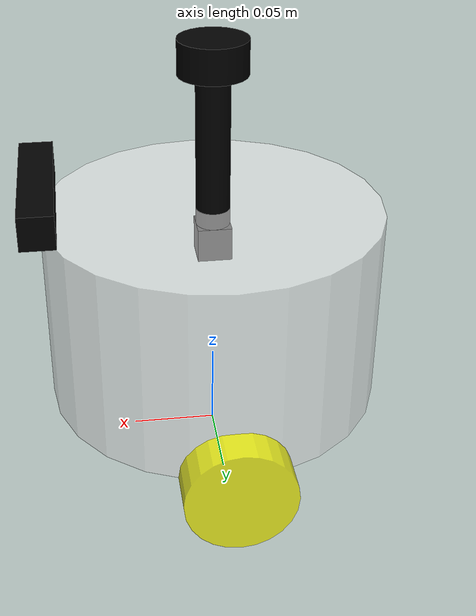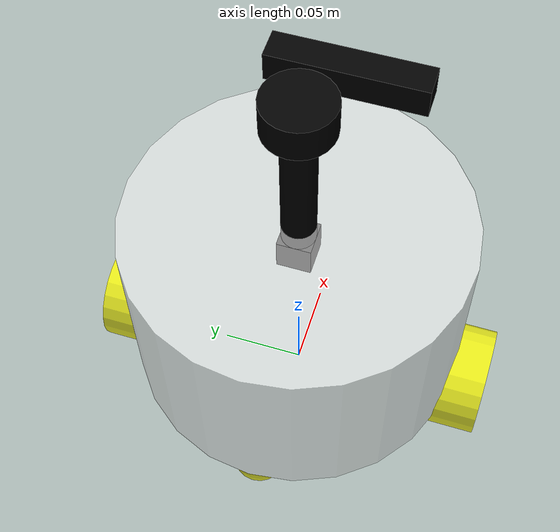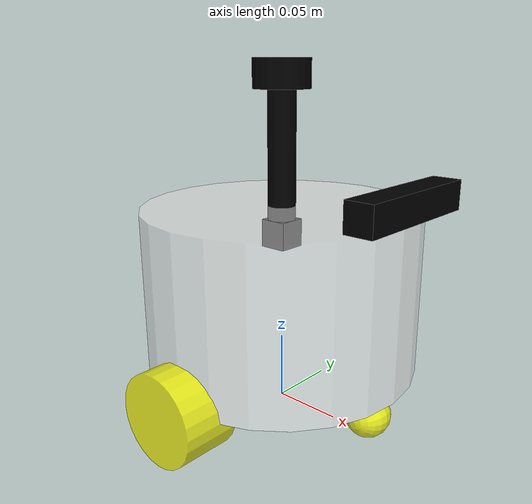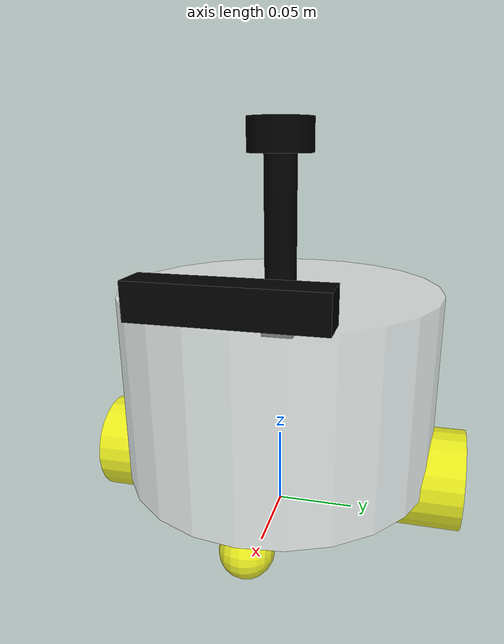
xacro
<?xml version="1.0"?>
<robot xmlns:xacro="http://ros.org/wiki/xacro" name="fishbot">
    <xacro:include filename="$(find demo_description)/urdf/fishbot/common_inertia.xacro"/>
    <!-- 机器人底盘的参数 -->
    <xacro:property name="base_length" value="0.12"/>
    <xacro:property name="base_radius" value="0.1"/>
    <xacro:property name="wheel_radius" value="0.032"/>
  <!-- base_link to livox_frame -->
    <xacro:arg name="xyz" default="0.0 0.0 0.10" />
    <xacro:arg name="rpy" default="0 0 0" />
    <!--基础部分 base_link-->
    <xacro:include filename="$(find demo_description)/urdf/fishbot/base.urdf.xacro"/>
    <!--传感器部分-->
    <xacro:include filename="$(find demo_description)/urdf/fishbot/sensor/imu.urdf.xacro"/>
    <xacro:include filename="$(find demo_description)/urdf/fishbot/sensor/laser.urdf.xacro"/>
    <xacro:include filename="$(find demo_description)/urdf/fishbot/sensor/camera.urdf.xacro"/>
    <!--执行器部分-->
    <xacro:include filename="$(find demo_description)/urdf/fishbot/actuator/wheel.urdf.xacro"/>
    <xacro:include filename="$(find demo_description)/urdf/fishbot/actuator/caster.urdf.xacro"/>
    <!-- 插件部分 -->
    <xacro:include filename="$(find demo_description)/urdf/fishbot/plugins/gazebo_control_plugin.xacro"/>
    <xacro:include filename="$(find demo_description)/urdf/fishbot/plugins/gazebo_sensor_plugin.xacro"/>
    <xacro:include filename="$(find demo_description)/urdf/fishbot/fishbot.ros2_control.xacro"/>

    <xacro:base_link length="${base_length}" radius="${base_radius}"/>
    <xacro:imu_link xyz="0 0 0.04"/>
    <xacro:camera_link xyz="${base_radius} 0 0.075"/>
    <xacro:laser_link xyz="0.0 0 0.10"/>

    <xacro:wheel_xacro wheel_name="left_wheel" xyz="0.0 0.1 -${base_length/2}"/>
    <xacro:wheel_xacro wheel_name="right_wheel" xyz="0.0 -0.1 -${base_length/2}"/>
    <xacro:caster_xacro caster_name="front_caster" xyz="0.08 0.0 -${base_length/2+wheel_radius/2}"/>
    <xacro:caster_xacro caster_name="back_caster" xyz="-0.08 0.0 -${base_length/2+wheel_radius/2}"/>

    <xacro:gazebo_sensor_plugin/>
    <xacro:fishbot_ros2_control/>
    <!-- mid360_imu plugin -->
    <!-- https://github.com/ros-simulation/gazebo_ros_pkgs/wiki/ROS-2-Migration:-IMU-Sensors -->

    <!-- Livox-Mid360  -->

    <!-- 设置材质 -->
    <gazebo reference="imu_link">
        <material>Gazebo/BuildingFrame</material>
    </gazebo>
</robot>

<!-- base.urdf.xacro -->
<robot xmlns:xacro="http://ros.org/wiki/xacro" >
    <xacro:include filename="$(find demo_description)/urdf/fishbot/common_inertia.xacro"/>

    <xacro:macro name="base_link" params="length radius">
        <link name="base_footprint"/>

        <!-- 机器人的身体部分 -->
        <link name="base_link">
            <!--部件外观描述-->
            <visual>
                <!-- 沿着自己几何中心的偏移和旋转量 -->
                <origin xyz="0 0 0" rpy="0 0 0"/>
                <!-- 几何形状 -->
                <geometry>
                <!-- 圆柱体 半径 长度 -->
                    <cylinder length="${length}" radius="${radius}"/>
                </geometry>
                <!-- 材质颜色 -->
                <material name="white">
                    <color rgba="1.0 1.0 1.0 0.5"/>
                </material>
            </visual>
            <!-- 碰撞描述 -->
            <collision>
                <!-- 沿着自己几何中心的偏移和旋转量 -->
                <origin xyz="0 0 0" rpy="0 0 0"/>
                <!-- 几何形状 -->
                <geometry>
                <!-- 圆柱体 半径 长度 -->
                    <cylinder length="${length}" radius="${radius}"/>
                </geometry>
                <!-- 材质颜色 -->
                <material name="white">
                    <color rgba="1.0 1.0 1.0 0.5"/>
                </material>
            </collision>
            <!-- 惯性描述 -->
            <xacro:cylinder_inertia m="1.0" r="${radius}" h="${length}"/>
        </link>

        <!-- 机器人的关节,用于组成 -->
        <joint name="base_link_joint" type="fixed">
            <parent link="base_footprint"/>
            <child link="base_link"/>
            <origin xyz="0 0 ${length/2+wheel_radius-0.001}" rpy="0 0 0"/>
        </joint>

    </xacro:macro>
</robot>

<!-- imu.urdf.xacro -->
<robot xmlns:xacro="http://ros.org/wiki/xacro" >
    <xacro:include filename="$(find demo_description)/urdf/fishbot/common_inertia.xacro"/>
    <xacro:macro name="imu_link" params="xyz">
            <!-- 机器人的IMU部件，惯性测量传感器 -->
        <link name="imu_link">
            <visual>
                <!-- 沿着自己几何中心的偏移和旋转量 -->
                <origin xyz="0 0 0" rpy="0 0 0"/>
                <!-- 几何形状 -->
                <geometry>
                    <!-- 长方体 长 宽 高 -->
                    <box size="0.02 0.02 0.02"/>
                </geometry>
                <!-- 材质颜色 -->
                <material name="black">
                    <color rgba="0.0 0.0 0.0 1.0"/>
                </material>
            </visual>
            <!-- 碰撞描述 -->
            <collision>
                <origin xyz="0 0 0" rpy="0 0 0"/>
                <geometry>
                    <box size="0.02 0.02 0.02"/>
                </geometry>
                <material name="black">
                    <color rgba="0.0 0.0 0.0 1.0"/>
                </material>
            </collision>
            <!-- 惯性描述 -->
            <xacro:box_inertia m="0.05" w="0.02" h="0.02" d="0.02"/>
        </link>

        <!-- 机器人的关节,用于组成 -->
        <joint name="imu_link_joint" type="fixed">
            <parent link="base_link"/>
            <child link="imu_link"/>
            <origin xyz="${xyz}" rpy="0 0 0"/>
        </joint>
    </xacro:macro>
</robot>

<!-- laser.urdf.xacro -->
<robot xmlns:xacro="http://ros.org/wiki/xacro" >
    <xacro:include filename="$(find demo_description)/urdf/fishbot/common_inertia.xacro"/>
    <xacro:macro name="laser_link" params="xyz">
            <!-- 雷达支撑杆 -->
            <link name="laser_cylinder_link">
                <visual>
                    <origin xyz="0 0 0" rpy="0 0 0"/>
                    <geometry>
                        <cylinder length="0.1" radius="0.01"/>
                    </geometry>
                    <material name="black">
                        <color rgba="0.0 0.0 0.0 1.0"/>
                    </material>
                </visual>
                <!-- 碰撞描述 -->
                <collision>
                    <origin xyz="0 0 0" rpy="0 0 0"/>
                    <geometry>
                        <cylinder length="0.1" radius="0.01"/>
                    </geometry>
                    <material name="black">
                        <color rgba="0.0 0.0 0.0 1.0"/>
                    </material>
                </collision>
                <!-- 惯性描述 -->
                <xacro:cylinder_inertia m="0.05" r="0.01" h="0.1"/>
            </link>

            <!-- 雷达 -->
            <link name="laser_link">
                <visual>
                    <origin xyz="0 0 0" rpy="0 0 0"/>
                    <geometry>
                        <cylinder length="0.02" radius="0.02"/>
                    </geometry>
                    <material name="black">
                        <color rgba="0.0 0.0 0.0 1.0"/>
                    </material>
                </visual>
                <!-- 碰撞描述 -->
                <collision>
                    <origin xyz="0 0 0" rpy="0 0 0"/>
                    <geometry>
                        <cylinder length="0.02" radius="0.02"/>
                    </geometry>
                    <material name="black">
                        <color rgba="0.0 0.0 0.0 1.0"/>
                    </material>
                </collision>
                <!-- 惯性描述 -->
                <xacro:cylinder_inertia m="0.1" r="0.02" h="0.02"/>
            </link>

            <!-- 雷达与支撑杆的关节 -->
            <joint name="joint_joint" type="fixed">
                <parent link="laser_cylinder_link"/>
                <child link="laser_link"/>
                <origin xyz="0 0 0.05" rpy="0 0 0"/>
            </joint>

            <!-- 支撑杆与baselink的关节 -->
            <joint name="laser_cylinder_joint" type="fixed">
                <parent link="base_link"/>
                <child link="laser_cylinder_link"/>
                <origin xyz="${xyz}" rpy="0 0 0"/>
            </joint>

            <gazebo reference="laser_link">
                <material>Gazebo/Black</material>
            </gazebo>

            <gazebo reference="laser_cylinder_link">
                <material>Gazebo/Black</material>
            </gazebo>

            </xacro:macro>
</robot>

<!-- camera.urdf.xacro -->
<robot xmlns:xacro="http://ros.org/wiki/xacro" >
    <xacro:include filename="$(find demo_description)/urdf/fishbot/common_inertia.xacro"/>
    <xacro:macro name="camera_link" params="xyz">
            <!-- 机器人的IMU部件，惯性测量传感器 -->
        <link name="camera_link">
            <visual>
                <origin xyz="0 0 0" rpy="0 0 0"/>
                <geometry>
                    <box size="0.02 0.1 0.02"/>
                </geometry>
                <material name="black">
                    <color rgba="0.0 0.0 0.0 1.0"/>
                </material>
            </visual>
            <!-- 碰撞描述 -->
            <collision>
                <origin xyz="0 0 0" rpy="0 0 0"/>
                <geometry>
                    <box size="0.02 0.1 0.02"/>
                </geometry>
                <material name="black">
                    <color rgba="0.0 0.0 0.0 1.0"/>
                </material>
            </collision>
            <!-- 惯性描述 -->
            <xacro:box_inertia m="0.1" w="0.02" h="0.1" d="0.02"/>
        </link>

        <!-- 机器人的关节,用于组成 -->
        <joint name="camera_link_joint" type="fixed">
            <parent link="base_link"/>
            <child link="camera_link"/>
            <origin xyz="${xyz}" rpy="0 0 0"/>
        </joint>
    </xacro:macro>
</robot>

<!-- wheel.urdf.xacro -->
<robot xmlns:xacro="http://ros.org/wiki/xacro" >
    <xacro:macro name="wheel_xacro" params="wheel_name xyz">
            <!-- 机器人的IMU部件，惯性测量传感器 -->
        <link name="${wheel_name}_link">
            <visual>
                <!-- 沿着自己几何中心的偏移和旋转量 -->
                <origin xyz="0 0 0" rpy="1.57079 0 0"/>
                <!-- 几何形状 -->
                <geometry>
                    <cylinder length="0.04" radius="0.032"/>
                </geometry>
                <!-- 材质颜色 -->
                <material name="yellow">
                    <color rgba="1.0 1.0 0.0 0.8"/>
                </material>
            </visual>
            <!-- 碰撞描述 -->
            <collision>
                <origin xyz="0 0 0" rpy="1.57079 0 0"/>
                <geometry>
                    <cylinder length="0.04" radius="0.032"/>
                </geometry>
                <material name="yellow">
                    <color rgba="1.0 1.0 0.0 0.8"/>
                </material>
            </collision>
            <!-- 惯性描述 -->
            <xacro:cylinder_inertia m="0.05" r="0.032" h="0.04"/>
        </link>

        <!-- 机器人的关节,用于组成 -->
        <joint name="${wheel_name}_joint" type="continuous">
            <parent link="base_link"/>
            <child link="${wheel_name}_link"/>
            <origin xyz="${xyz}" rpy="0 0 0"/>
            <axis xyz="0 1 0"/>
        </joint>

        <gazebo reference="${wheel_name}_link">
            <!-- 摩擦系数 -->
            <mu1 value="20.0"/>
            <mu2 value="20.0"/>
            <!-- 弹簧系数 -->
            <kp value="100000000.0"/>
            <!-- 阻尼系数 -->
            <kd value="1.0"/>
            <!-- 颜色 -->
            <material>Gazebo/Yellow</material>
        </gazebo>

    </xacro:macro>
</robot>

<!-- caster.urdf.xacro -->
<robot xmlns:xacro="http://ros.org/wiki/xacro" >
    <xacro:macro name="caster_xacro" params="caster_name xyz">
            <!-- 机器人的IMU部件，惯性测量传感器 -->
        <link name="${caster_name}_link">
            <visual>
                <!-- 沿着自己几何中心的偏移和旋转量 -->
                <origin xyz="0 0 0" rpy="1.57079 0 0"/>
                <!-- 几何形状 -->
                <geometry>
                    <sphere radius="0.016"/>
                </geometry>
                <!-- 材质颜色 -->
                <material name="yellow">
                    <color rgba="1.0 1.0 0.0 0.8"/>
                </material>
            </visual>
            <!-- 碰撞描述 -->
            <collision>
                <origin xyz="0 0 0" rpy="0 0 0"/>
                <geometry>
                    <sphere radius="0.016"/>
                </geometry>
                <material name="yellow">
                    <color rgba="1.0 1.0 0.0 0.8"/>
                </material>
            </collision>
            <!-- 惯性描述 -->
            <xacro:sphere_inertia m="0.05" r="0.016"/>
        </link>

        <!-- 机器人的关节,用于组成 -->
        <joint name="${caster_name}_joint" type="fixed">
            <parent link="base_link"/>
            <child link="${caster_name}_link"/>
            <origin xyz="${xyz}" rpy="0 0 0"/>
        </joint>

        <!-- 轮子与baselink的关节 -->
        <gazebo reference="${caster_name}_link">
            <!-- 摩擦系数 -->
            <mu1 value="0.0"/>
            <mu2 value="0.0"/>
            <!-- 弹簧系数 -->
            <kp value="100000000.0"/>
            <!-- 阻尼系数 -->
            <kd value="1.0"/>
            <!-- 颜色 -->
            <material>Gazebo/Yellow</material>
        </gazebo>

    </xacro:macro>
</robot>
